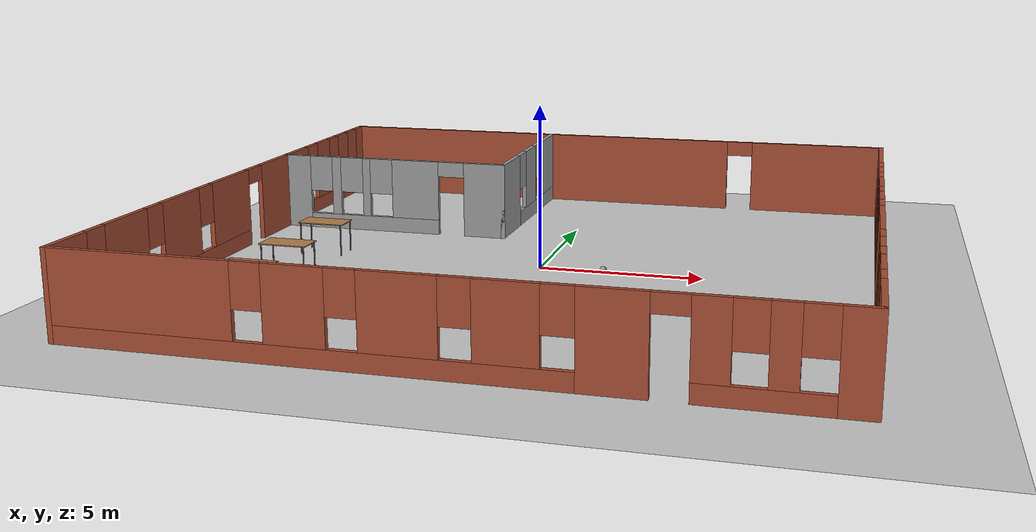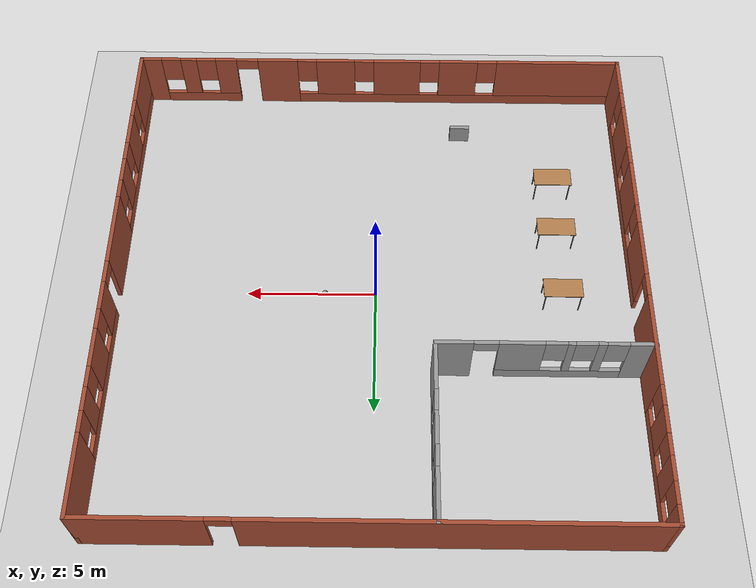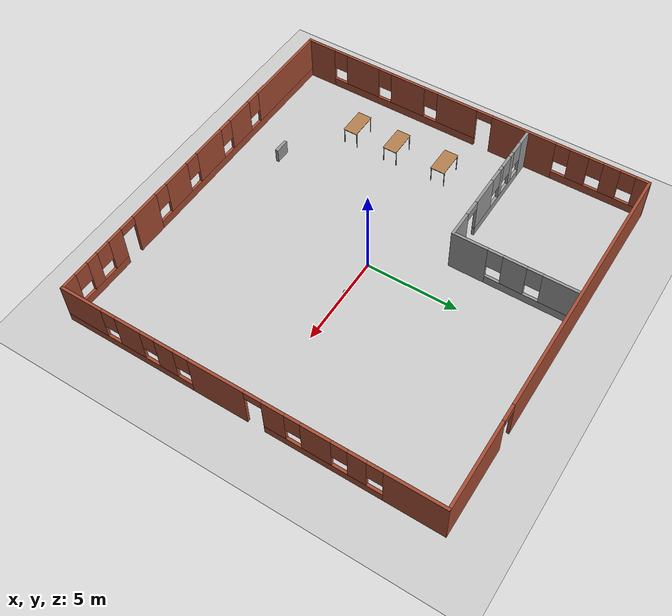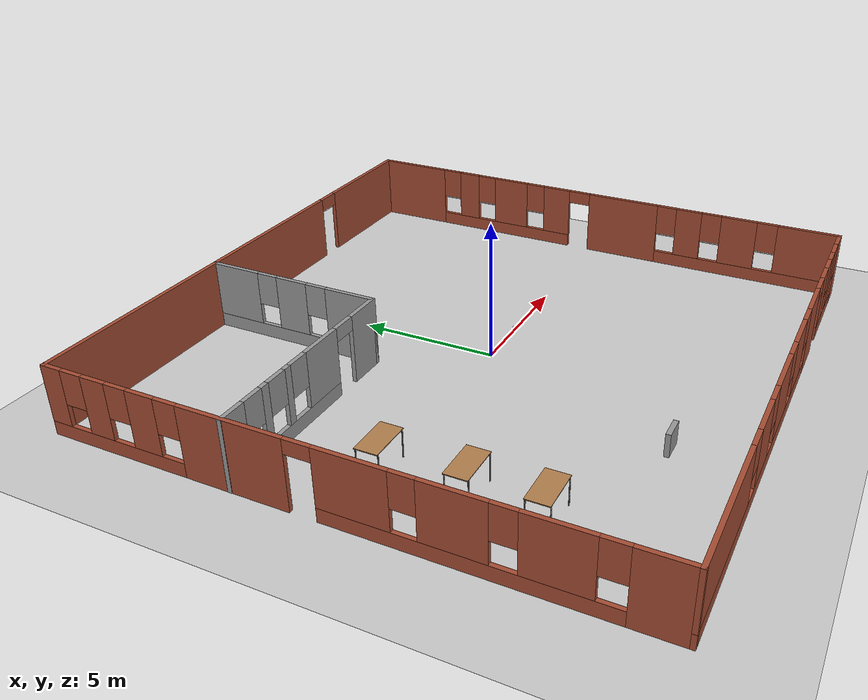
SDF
<sdf version="1.6">
 <world name="default">
  <plugin name="hello.cpp" filename="libhello.so"/>
  <light name="sun" type="directional">
   <pose>0 0 10 0 -0 0</pose>
   <diffuse>0.8 0.8 0.8 1</diffuse>
   <specular>0.2 0.2 0.2 1</specular>
   <attenuation>
    <range>1000</range>
    <constant>0.9</constant>
    <linear>0.01</linear>
    <quadratic>0.001</quadratic>
   </attenuation>
   <direction>-0.5 0.1 -0.9</direction>
  </light>
  <model name="ground_plane">
   <static>1</static>
   <link name="link">
    <collision name="collision">
     <geometry><plane><normal>0 0 1</normal><size>100 100</size></plane></geometry>
     <surface><friction><ode><mu>100</mu><mu2>50</mu2></ode></friction></surface>
    </collision>
    <visual name="visual">
     <cast_shadows>0</cast_shadows>
     <geometry><plane><normal>0 0 1</normal><size>100 100</size></plane></geometry>
     <material>
      <script><uri>file://media/materials/scripts/gazebo.material</uri><name>Gazebo/Grey</name></script>
     </material>
    </visual>
   </link>
  </model>
  <gravity>0 0 -9.8</gravity>
  <magnetic_field>6e-06 2.3e-05 -4.2e-05</magnetic_field>
  <atmosphere type="adiabatic"/>
  <physics name="default_physics" default="0" type="ode">
   <max_step_size>0.001</max_step_size>
   <real_time_factor>1</real_time_factor>
   <real_time_update_rate>1000</real_time_update_rate>
  </physics>
  <scene><ambient>0.4 0.4 0.4 1</ambient><background>0.7 0.7 0.7 1</background><shadows>1</shadows></scene>
  <spherical_coordinates>
   <surface_model>EARTH_WGS84</surface_model>
   <latitude_deg>0</latitude_deg>
   <longitude_deg>0</longitude_deg>
   <elevation>0</elevation>
   <heading_deg>0</heading_deg>
  </spherical_coordinates>
  <model name="building1">
   <pose>-0.00536 0 0 0 -0 0</pose>
   <link name="Wall_0">
    <pose>-9.99464 0 0 0 -0 1.5708</pose>
    <visual name="Wall_0_Visual_0">
     <pose>-9.21965 0 1.25 0 -0 0</pose>
     <geometry><box><size>1.71071 0.15 2.5</size></box></geometry>
     <material>
      <script><uri>file://media/materials/scripts/gazebo.material</uri><name>Gazebo/Bricks</name></script>
      <ambient>0.333333 0 0.498039 1</ambient>
     </material>
     <meta><layer>0</layer></meta>
    </visual>
    <collision name="Wall_0_Collision_0">
     <geometry><box><size>1.71071 0.15 2.5</size></box></geometry>
     <pose>-9.21965 0 1.25 0 -0 0</pose>
    </collision>
    <visual name="Wall_0_Visual_1">
     <pose>3.15877 0 1.25 0 -0 0</pose>
     <geometry><box><size>3.61725 0.15 2.5</size></box></geometry>
     <material>
      <script><uri>file://media/materials/scripts/gazebo.material</uri><name>Gazebo/Bricks</name></script>
      <ambient>0.333333 0 0.498039 1</ambient>
     </material>
     <meta><layer>0</layer></meta>
    </visual>
    <collision name="Wall_0_Collision_1">
     <geometry><box><size>3.61725 0.15 2.5</size></box></geometry>
     <pose>3.15877 0 1.25 0 -0 0</pose>
    </collision>
    <visual name="Wall_0_Visual_2">
     <pose>-3.95708 0 0.25 0 -0 0</pose>
     <geometry><box><size>8.81444 0.15 0.5</size></box></geometry>
     <material>
      <script><uri>file://media/materials/scripts/gazebo.material</uri><name>Gazebo/Bricks</name></script>
      <ambient>0.333333 0 0.498039 1</ambient>
     </material>
     <meta><layer>0</layer></meta>
    </visual>
    <collision name="Wall_0_Collision_2">
     <geometry><box><size>8.81444 0.15 0.5</size></box></geometry>
     <pose>-3.95708 0 0.25 0 -0 0</pose>
    </collision>
    <visual name="Wall_0_Visual_3">
     <pose>7.5212 0 0.25 0 -0 0</pose>
     <geometry><box><size>5.10761 0.15 0.5</size></box></geometry>
     <material>
      <script><uri>file://media/materials/scripts/gazebo.material</uri><name>Gazebo/Bricks</name></script>
      <ambient>0.333333 0 0.498039 1</ambient>
     </material>
     <meta><layer>0</layer></meta>
    </visual>
    <collision name="Wall_0_Collision_3">
     <geometry><box><size>5.10761 0.15 0.5</size></box></geometry>
     <pose>7.5212 0 0.25 0 -0 0</pose>
    </collision>
    <visual name="Wall_0_Visual_4">
     <pose>-6.54531 0 1.5 0 -0 0</pose>
     <geometry><box><size>2.03796 0.15 2</size></box></geometry>
     <material>
      <script><uri>file://media/materials/scripts/gazebo.material</uri><name>Gazebo/Bricks</name></script>
      <ambient>0.333333 0 0.498039 1</ambient>
     </material>
     <meta><layer>0</layer></meta>
    </visual>
    <collision name="Wall_0_Collision_4">
     <geometry><box><size>2.03796 0.15 2</size></box></geometry>
     <pose>-6.54531 0 1.5 0 -0 0</pose>
    </collision>
    <visual name="Wall_0_Visual_5">
     <pose>-3.70736 0 1.5 0 -0 0</pose>
     <geometry><box><size>2.03796 0.15 2</size></box></geometry>
     <material>
      <script><uri>file://media/materials/scripts/gazebo.material</uri><name>Gazebo/Bricks</name></script>
      <ambient>0.333333 0 0.498039 1</ambient>
     </material>
     <meta><layer>0</layer></meta>
    </visual>
    <collision name="Wall_0_Collision_5">
     <geometry><box><size>2.03796 0.15 2</size></box></geometry>
     <pose>-3.70736 0 1.5 0 -0 0</pose>
    </collision>
    <visual name="Wall_0_Visual_6">
     <pose>-0.719116 0 1.5 0 -0 0</pose>
     <geometry><box><size>2.33852 0.15 2</size></box></geometry>
     <material>
      <script><uri>file://media/materials/scripts/gazebo.material</uri><name>Gazebo/Bricks</name></script>
      <ambient>0.333333 0 0.498039 1</ambient>
     </material>
     <meta><layer>0</layer></meta>
    </visual>
    <collision name="Wall_0_Collision_6">
     <geometry><box><size>2.33852 0.15 2</size></box></geometry>
     <pose>-0.719116 0 1.5 0 -0 0</pose>
    </collision>
    <visual name="Wall_0_Visual_7">
     <pose>-0.719116 0 1.5 0 -0 0</pose>
     <geometry><box><size>2.33852 0.15 2</size></box></geometry>
     <material>
      <script><uri>file://media/materials/scripts/gazebo.material</uri><name>Gazebo/Bricks</name></script>
      <ambient>0.333333 0 0.498039 1</ambient>
     </material>
     <meta><layer>0</layer></meta>
    </visual>
    <collision name="Wall_0_Collision_7">
     <geometry><box><size>2.33852 0.15 2</size></box></geometry>
     <pose>-0.719116 0 1.5 0 -0 0</pose>
    </collision>
    <visual name="Wall_0_Visual_8">
     <pose>6.28281 0 1.5 0 -0 0</pose>
     <geometry><box><size>1.03084 0.15 2</size></box></geometry>
     <material>
      <script><uri>file://media/materials/scripts/gazebo.material</uri><name>Gazebo/Bricks</name></script>
      <ambient>0.333333 0 0.498039 1</ambient>
     </material>
     <meta><layer>0</layer></meta>
    </visual>
    <collision name="Wall_0_Collision_8">
     <geometry><box><size>1.03084 0.15 2</size></box></geometry>
     <pose>6.28281 0 1.5 0 -0 0</pose>
    </collision>
    <visual name="Wall_0_Visual_9">
     <pose>8.05262 0 1.5 0 -0 0</pose>
     <geometry><box><size>0.908783 0.15 2</size></box></geometry>
     <material>
      <script><uri>file://media/materials/scripts/gazebo.material</uri><name>Gazebo/Bricks</name></script>
      <ambient>0.333333 0 0.498039 1</ambient>
     </material>
     <meta><layer>0</layer></meta>
    </visual>
    <collision name="Wall_0_Collision_9">
     <geometry><box><size>0.908783 0.15 2</size></box></geometry>
     <pose>8.05262 0 1.5 0 -0 0</pose>
    </collision>
    <visual name="Wall_0_Visual_10">
     <pose>9.69101 0 1.5 0 -0 0</pose>
     <geometry><box><size>0.767987 0.15 2</size></box></geometry>
     <material>
      <script><uri>file://media/materials/scripts/gazebo.material</uri><name>Gazebo/Bricks</name></script>
      <ambient>0.333333 0 0.498039 1</ambient>
     </material>
     <meta><layer>0</layer></meta>
    </visual>
    <collision name="Wall_0_Collision_10">
     <geometry><box><size>0.767987 0.15 2</size></box></geometry>
     <pose>9.69101 0 1.5 0 -0 0</pose>
    </collision>
    <visual name="Wall_0_Visual_11">
     <pose>-7.96429 0 1.9 0 -0 0</pose>
     <geometry><box><size>0.8 0.15 1.2</size></box></geometry>
     <material>
      <script><uri>file://media/materials/scripts/gazebo.material</uri><name>Gazebo/Bricks</name></script>
      <ambient>0.333333 0 0.498039 1</ambient>
     </material>
     <meta><layer>0</layer></meta>
    </visual>
    <collision name="Wall_0_Collision_11">
     <geometry><box><size>0.8 0.15 1.2</size></box></geometry>
     <pose>-7.96429 0 1.9 0 -0 0</pose>
    </collision>
    <visual name="Wall_0_Visual_12">
     <pose>5.36739 0 1.9 0 -0 0</pose>
     <geometry><box><size>0.8 0.15 1.2</size></box></geometry>
     <material>
      <script><uri>file://media/materials/scripts/gazebo.material</uri><name>Gazebo/Bricks</name></script>
      <ambient>0.333333 0 0.498039 1</ambient>
     </material>
     <meta><layer>0</layer></meta>
    </visual>
    <collision name="Wall_0_Collision_12">
     <geometry><box><size>0.8 0.15 1.2</size></box></geometry>
     <pose>5.36739 0 1.9 0 -0 0</pose>
    </collision>
    <visual name="Wall_0_Visual_13">
     <pose>-5.12633 0 1.9 0 -0 0</pose>
     <geometry><box><size>0.8 0.15 1.2</size></box></geometry>
     <material>
      <script><uri>file://media/materials/scripts/gazebo.material</uri><name>Gazebo/Bricks</name></script>
      <ambient>0.333333 0 0.498039 1</ambient>
     </material>
     <meta><layer>0</layer></meta>
    </visual>
    <collision name="Wall_0_Collision_13">
     <geometry><box><size>0.8 0.15 1.2</size></box></geometry>
     <pose>-5.12633 0 1.9 0 -0 0</pose>
    </collision>
    <visual name="Wall_0_Visual_14">
     <pose>-2.28838 0 1.9 0 -0 0</pose>
     <geometry><box><size>0.8 0.15 1.2</size></box></geometry>
     <material>
      <script><uri>file://media/materials/scripts/gazebo.material</uri><name>Gazebo/Bricks</name></script>
      <ambient>0.333333 0 0.498039 1</ambient>
     </material>
     <meta><layer>0</layer></meta>
    </visual>
    <collision name="Wall_0_Collision_14">
     <geometry><box><size>0.8 0.15 1.2</size></box></geometry>
     <pose>-2.28838 0 1.9 0 -0 0</pose>
    </collision>
    <visual name="Wall_0_Visual_15">
     <pose>7.19823 0 1.9 0 -0 0</pose>
     <geometry><box><size>0.8 0.15 1.2</size></box></geometry>
     <material>
      <script><uri>file://media/materials/scripts/gazebo.material</uri><name>Gazebo/Bricks</name></script>
      <ambient>0.333333 0 0.498039 1</ambient>
     </material>
     <meta><layer>0</layer></meta>
    </visual>
    <collision name="Wall_0_Collision_15">
     <geometry><box><size>0.8 0.15 1.2</size></box></geometry>
     <pose>7.19823 0 1.9 0 -0 0</pose>
    </collision>
    <visual name="Wall_0_Visual_16">
     <pose>8.90701 0 1.9 0 -0 0</pose>
     <geometry><box><size>0.8 0.15 1.2</size></box></geometry>
     <material>
      <script><uri>file://media/materials/scripts/gazebo.material</uri><name>Gazebo/Bricks</name></script>
      <ambient>0.333333 0 0.498039 1</ambient>
     </material>
     <meta><layer>0</layer></meta>
    </visual>
    <collision name="Wall_0_Collision_16">
     <geometry><box><size>0.8 0.15 1.2</size></box></geometry>
     <pose>8.90701 0 1.9 0 -0 0</pose>
    </collision>
    <visual name="Wall_0_Visual_17">
     <pose>0.900144 0 2.25 0 -0 0</pose>
     <geometry><box><size>0.9 0.15 0.5</size></box></geometry>
     <material>
      <script><uri>file://media/materials/scripts/gazebo.material</uri><name>Gazebo/Bricks</name></script>
      <ambient>0.333333 0 0.498039 1</ambient>
     </material>
     <meta><layer>0</layer></meta>
    </visual>
    <collision name="Wall_0_Collision_17">
     <geometry><box><size>0.9 0.15 0.5</size></box></geometry>
     <pose>0.900144 0 2.25 0 -0 0</pose>
    </collision>
    <visual name="Wall_0_Visual_18">
     <pose>0.900144 0 2.25 0 -0 0</pose>
     <geometry><box><size>0.9 0.15 0.5</size></box></geometry>
     <material>
      <script><uri>file://media/materials/scripts/gazebo.material</uri><name>Gazebo/Bricks</name></script>
      <ambient>0.333333 0 0.498039 1</ambient>
     </material>
     <meta><layer>0</layer></meta>
    </visual>
    <collision name="Wall_0_Collision_18">
     <geometry><box><size>0.9 0.15 0.5</size></box></geometry>
     <pose>0.900144 0 2.25 0 -0 0</pose>
    </collision>
   </link>
   <link name="Wall_1">
    <pose>0.005363 10 0 0 -0 0</pose>
    <visual name="Wall_1_Visual_0">
     <pose>-2.76626 0 1.25 0 -0 0</pose>
     <geometry><box><size>14.6175 0.15 2.5</size></box></geometry>
     <material>
      <script><uri>file://media/materials/scripts/gazebo.material</uri><name>Gazebo/Bricks</name></script>
      <ambient>0 0.333333 0 1</ambient>
     </material>
     <meta><layer>0</layer></meta>
    </visual>
    <collision name="Wall_1_Collision_0">
     <geometry><box><size>14.6175 0.15 2.5</size></box></geometry>
     <pose>-2.76626 0 1.25 0 -0 0</pose>
    </collision>
    <visual name="Wall_1_Visual_1">
     <pose>7.75874 0 1.25 0 -0 0</pose>
     <geometry><box><size>4.63252 0.15 2.5</size></box></geometry>
     <material>
      <script><uri>file://media/materials/scripts/gazebo.material</uri><name>Gazebo/Bricks</name></script>
      <ambient>0 0.333333 0 1</ambient>
     </material>
     <meta><layer>0</layer></meta>
    </visual>
    <collision name="Wall_1_Collision_1">
     <geometry><box><size>4.63252 0.15 2.5</size></box></geometry>
     <pose>7.75874 0 1.25 0 -0 0</pose>
    </collision>
    <visual name="Wall_1_Visual_2">
     <pose>4.99248 0 2.25 0 -0 0</pose>
     <geometry><box><size>0.9 0.15 0.5</size></box></geometry>
     <material>
      <script><uri>file://media/materials/scripts/gazebo.material</uri><name>Gazebo/Bricks</name></script>
      <ambient>0 0.333333 0 1</ambient>
     </material>
     <meta><layer>0</layer></meta>
    </visual>
    <collision name="Wall_1_Collision_2">
     <geometry><box><size>0.9 0.15 0.5</size></box></geometry>
     <pose>4.99248 0 2.25 0 -0 0</pose>
    </collision>
   </link>
   <link name="Wall_2">
    <pose>10.0054 0 0 0 0 -1.5708</pose>
    <visual name="Wall_2_Visual_0">
     <pose>-8.55182 0 1.25 0 -0 0</pose>
     <geometry><box><size>3.04636 0.15 2.5</size></box></geometry>
     <material>
      <script><uri>file://media/materials/scripts/gazebo.material</uri><name>Gazebo/Bricks</name></script>
      <ambient>0.333333 0 0.498039 1</ambient>
     </material>
     <meta><layer>0</layer></meta>
    </visual>
    <collision name="Wall_2_Collision_0">
     <geometry><box><size>3.04636 0.15 2.5</size></box></geometry>
     <pose>-8.55182 0 1.25 0 -0 0</pose>
    </collision>
    <visual name="Wall_2_Visual_1">
     <pose>1.34263 0 1.25 0 -0 0</pose>
     <geometry><box><size>2.96678 0.15 2.5</size></box></geometry>
     <material>
      <script><uri>file://media/materials/scripts/gazebo.material</uri><name>Gazebo/Bricks</name></script>
      <ambient>0.333333 0 0.498039 1</ambient>
     </material>
     <meta><layer>0</layer></meta>
    </visual>
    <collision name="Wall_2_Collision_1">
     <geometry><box><size>2.96678 0.15 2.5</size></box></geometry>
     <pose>1.34263 0 1.25 0 -0 0</pose>
    </collision>
    <visual name="Wall_2_Visual_2">
     <pose>-4.0347 0 0.25 0 -0 0</pose>
     <geometry><box><size>5.98788 0.15 0.5</size></box></geometry>
     <material>
      <script><uri>file://media/materials/scripts/gazebo.material</uri><name>Gazebo/Bricks</name></script>
      <ambient>0.333333 0 0.498039 1</ambient>
     </material>
     <meta><layer>0</layer></meta>
    </visual>
    <collision name="Wall_2_Collision_2">
     <geometry><box><size>5.98788 0.15 0.5</size></box></geometry>
     <pose>-4.0347 0 0.25 0 -0 0</pose>
    </collision>
    <visual name="Wall_2_Visual_3">
     <pose>6.45051 0 0.25 0 -0 0</pose>
     <geometry><box><size>7.24897 0.15 0.5</size></box></geometry>
     <material>
      <script><uri>file://media/materials/scripts/gazebo.material</uri><name>Gazebo/Bricks</name></script>
      <ambient>0.333333 0 0.498039 1</ambient>
     </material>
     <meta><layer>0</layer></meta>
    </visual>
    <collision name="Wall_2_Collision_3">
     <geometry><box><size>7.24897 0.15 0.5</size></box></geometry>
     <pose>6.45051 0 0.25 0 -0 0</pose>
    </collision>
    <visual name="Wall_2_Visual_4">
     <pose>-5.77424 0 1.5 0 -0 0</pose>
     <geometry><box><size>0.908783 0.15 2</size></box></geometry>
     <material>
      <script><uri>file://media/materials/scripts/gazebo.material</uri><name>Gazebo/Bricks</name></script>
      <ambient>0.333333 0 0.498039 1</ambient>
     </material>
     <meta><layer>0</layer></meta>
    </visual>
    <collision name="Wall_2_Collision_4">
     <geometry><box><size>0.908783 0.15 2</size></box></geometry>
     <pose>-5.77424 0 1.5 0 -0 0</pose>
    </collision>
    <visual name="Wall_2_Visual_5">
     <pose>-3.76032 0 1.5 0 -0 0</pose>
     <geometry><box><size>1.51906 0.15 2</size></box></geometry>
     <material>
      <script><uri>file://media/materials/scripts/gazebo.material</uri><name>Gazebo/Bricks</name></script>
      <ambient>0.333333 0 0.498039 1</ambient>
     </material>
     <meta><layer>0</layer></meta>
    </visual>
    <collision name="Wall_2_Collision_5">
     <geometry><box><size>1.51906 0.15 2</size></box></geometry>
     <pose>-3.76032 0 1.5 0 -0 0</pose>
    </collision>
    <visual name="Wall_2_Visual_6">
     <pose>-1.62077 0 1.5 0 -0 0</pose>
     <geometry><box><size>1.16003 0.15 2</size></box></geometry>
     <material>
      <script><uri>file://media/materials/scripts/gazebo.material</uri><name>Gazebo/Bricks</name></script>
      <ambient>0.333333 0 0.498039 1</ambient>
     </material>
     <meta><layer>0</layer></meta>
    </visual>
    <collision name="Wall_2_Collision_6">
     <geometry><box><size>1.16003 0.15 2</size></box></geometry>
     <pose>-1.62077 0 1.5 0 -0 0</pose>
    </collision>
    <visual name="Wall_2_Visual_7">
     <pose>-1.62077 0 1.5 0 -0 0</pose>
     <geometry><box><size>1.16003 0.15 2</size></box></geometry>
     <material>
      <script><uri>file://media/materials/scripts/gazebo.material</uri><name>Gazebo/Bricks</name></script>
      <ambient>0.333333 0 0.498039 1</ambient>
     </material>
     <meta><layer>0</layer></meta>
    </visual>
    <collision name="Wall_2_Collision_7">
     <geometry><box><size>1.16003 0.15 2</size></box></geometry>
     <pose>-1.62077 0 1.5 0 -0 0</pose>
    </collision>
    <visual name="Wall_2_Visual_8">
     <pose>4.14894 0 1.5 0 -0 0</pose>
     <geometry><box><size>1.04584 0.15 2</size></box></geometry>
     <material>
      <script><uri>file://media/materials/scripts/gazebo.material</uri><name>Gazebo/Bricks</name></script>
      <ambient>0.333333 0 0.498039 1</ambient>
     </material>
     <meta><layer>0</layer></meta>
    </visual>
    <collision name="Wall_2_Collision_8">
     <geometry><box><size>1.04584 0.15 2</size></box></geometry>
     <pose>4.14894 0 1.5 0 -0 0</pose>
    </collision>
    <visual name="Wall_2_Visual_9">
     <pose>6.18204 0 1.5 0 -0 0</pose>
     <geometry><box><size>1.42035 0.15 2</size></box></geometry>
     <material>
      <script><uri>file://media/materials/scripts/gazebo.material</uri><name>Gazebo/Bricks</name></script>
      <ambient>0.333333 0 0.498039 1</ambient>
     </material>
     <meta><layer>0</layer></meta>
    </visual>
    <collision name="Wall_2_Collision_9">
     <geometry><box><size>1.42035 0.15 2</size></box></geometry>
     <pose>6.18204 0 1.5 0 -0 0</pose>
    </collision>
    <visual name="Wall_2_Visual_10">
     <pose>8.88361 0 1.5 0 -0 0</pose>
     <geometry><box><size>2.38278 0.15 2</size></box></geometry>
     <material>
      <script><uri>file://media/materials/scripts/gazebo.material</uri><name>Gazebo/Bricks</name></script>
      <ambient>0.333333 0 0.498039 1</ambient>
     </material>
     <meta><layer>0</layer></meta>
    </visual>
    <collision name="Wall_2_Collision_10">
     <geometry><box><size>2.38278 0.15 2</size></box></geometry>
     <pose>8.88361 0 1.5 0 -0 0</pose>
    </collision>
    <visual name="Wall_2_Visual_11">
     <pose>-6.62864 0 1.9 0 -0 0</pose>
     <geometry><box><size>0.8 0.15 1.2</size></box></geometry>
     <material>
      <script><uri>file://media/materials/scripts/gazebo.material</uri><name>Gazebo/Bricks</name></script>
      <ambient>0.333333 0 0.498039 1</ambient>
     </material>
     <meta><layer>0</layer></meta>
    </visual>
    <collision name="Wall_2_Collision_11">
     <geometry><box><size>0.8 0.15 1.2</size></box></geometry>
     <pose>-6.62864 0 1.9 0 -0 0</pose>
    </collision>
    <visual name="Wall_2_Visual_12">
     <pose>3.22603 0 1.9 0 -0 0</pose>
     <geometry><box><size>0.8 0.15 1.2</size></box></geometry>
     <material>
      <script><uri>file://media/materials/scripts/gazebo.material</uri><name>Gazebo/Bricks</name></script>
      <ambient>0.333333 0 0.498039 1</ambient>
     </material>
     <meta><layer>0</layer></meta>
    </visual>
    <collision name="Wall_2_Collision_12">
     <geometry><box><size>0.8 0.15 1.2</size></box></geometry>
     <pose>3.22603 0 1.9 0 -0 0</pose>
    </collision>
    <visual name="Wall_2_Visual_13">
     <pose>-4.91985 0 1.9 0 -0 0</pose>
     <geometry><box><size>0.8 0.15 1.2</size></box></geometry>
     <material>
      <script><uri>file://media/materials/scripts/gazebo.material</uri><name>Gazebo/Bricks</name></script>
      <ambient>0.333333 0 0.498039 1</ambient>
     </material>
     <meta><layer>0</layer></meta>
    </visual>
    <collision name="Wall_2_Collision_13">
     <geometry><box><size>0.8 0.15 1.2</size></box></geometry>
     <pose>-4.91985 0 1.9 0 -0 0</pose>
    </collision>
    <visual name="Wall_2_Visual_14">
     <pose>-2.60079 0 1.9 0 -0 0</pose>
     <geometry><box><size>0.8 0.15 1.2</size></box></geometry>
     <material>
      <script><uri>file://media/materials/scripts/gazebo.material</uri><name>Gazebo/Bricks</name></script>
      <ambient>0.333333 0 0.498039 1</ambient>
     </material>
     <meta><layer>0</layer></meta>
    </visual>
    <collision name="Wall_2_Collision_14">
     <geometry><box><size>0.8 0.15 1.2</size></box></geometry>
     <pose>-2.60079 0 1.9 0 -0 0</pose>
    </collision>
    <visual name="Wall_2_Visual_15">
     <pose>5.07186 0 1.9 0 -0 0</pose>
     <geometry><box><size>0.8 0.15 1.2</size></box></geometry>
     <material>
      <script><uri>file://media/materials/scripts/gazebo.material</uri><name>Gazebo/Bricks</name></script>
      <ambient>0.333333 0 0.498039 1</ambient>
     </material>
     <meta><layer>0</layer></meta>
    </visual>
    <collision name="Wall_2_Collision_15">
     <geometry><box><size>0.8 0.15 1.2</size></box></geometry>
     <pose>5.07186 0 1.9 0 -0 0</pose>
    </collision>
    <visual name="Wall_2_Visual_16">
     <pose>7.29222 0 1.9 0 -0 0</pose>
     <geometry><box><size>0.8 0.15 1.2</size></box></geometry>
     <material>
      <script><uri>file://media/materials/scripts/gazebo.material</uri><name>Gazebo/Bricks</name></script>
      <ambient>0.333333 0 0.498039 1</ambient>
     </material>
     <meta><layer>0</layer></meta>
    </visual>
    <collision name="Wall_2_Collision_16">
     <geometry><box><size>0.8 0.15 1.2</size></box></geometry>
     <pose>7.29222 0 1.9 0 -0 0</pose>
    </collision>
    <visual name="Wall_2_Visual_17">
     <pose>-0.590757 0 2.25 0 -0 0</pose>
     <geometry><box><size>0.9 0.15 0.5</size></box></geometry>
     <material>
      <script><uri>file://media/materials/scripts/gazebo.material</uri><name>Gazebo/Bricks</name></script>
      <ambient>0.333333 0 0.498039 1</ambient>
     </material>
     <meta><layer>0</layer></meta>
    </visual>
    <collision name="Wall_2_Collision_17">
     <geometry><box><size>0.9 0.15 0.5</size></box></geometry>
     <pose>-0.590757 0 2.25 0 -0 0</pose>
    </collision>
    <visual name="Wall_2_Visual_18">
     <pose>-0.590757 0 2.25 0 -0 0</pose>
     <geometry><box><size>0.9 0.15 0.5</size></box></geometry>
     <material>
      <script><uri>file://media/materials/scripts/gazebo.material</uri><name>Gazebo/Bricks</name></script>
      <ambient>0.333333 0 0.498039 1</ambient>
     </material>
     <meta><layer>0</layer></meta>
    </visual>
    <collision name="Wall_2_Collision_18">
     <geometry><box><size>0.9 0.15 0.5</size></box></geometry>
     <pose>-0.590757 0 2.25 0 -0 0</pose>
    </collision>
   </link>
   <link name="Wall_3">
    <pose>0.005363 -10 0 0 -0 3.14159</pose>
    <visual name="Wall_3_Visual_0">
     <pose>-9.61961 0 1.25 0 -0 0</pose>
     <geometry><box><size>0.910771 0.15 2.5</size></box></geometry>
     <material>
      <script><uri>file://media/materials/scripts/gazebo.material</uri><name>Gazebo/Bricks</name></script>
      <ambient>0 0.333333 0 1</ambient>
     </material>
     <meta><layer>0</layer></meta>
    </visual>
    <collision name="Wall_3_Collision_0">
     <geometry><box><size>0.910771 0.15 2.5</size></box></geometry>
     <pose>-9.61961 0 1.25 0 -0 0</pose>
    </collision>
    <visual name="Wall_3_Visual_1">
     <pose>-4.27329 0 1.25 0 -0 0</pose>
     <geometry><box><size>1.66767 0.15 2.5</size></box></geometry>
     <material>
      <script><uri>file://media/materials/scripts/gazebo.material</uri><name>Gazebo/Bricks</name></script>
      <ambient>0 0.333333 0 1</ambient>
     </material>
     <meta><layer>0</layer></meta>
    </visual>
    <collision name="Wall_3_Collision_1">
     <geometry><box><size>1.66767 0.15 2.5</size></box></geometry>
     <pose>-4.27329 0 1.25 0 -0 0</pose>
    </collision>
    <visual name="Wall_3_Visual_2">
     <pose>-7.58568 0 0.25 0 -0 0</pose>
     <geometry><box><size>3.1571 0.15 0.5</size></box></geometry>
     <material>
      <script><uri>file://media/materials/scripts/gazebo.material</uri><name>Gazebo/Bricks</name></script>
      <ambient>0 0.333333 0 1</ambient>
     </material>
     <meta><layer>0</layer></meta>
    </visual>
    <collision name="Wall_3_Collision_2">
     <geometry><box><size>3.1571 0.15 0.5</size></box></geometry>
     <pose>-7.58568 0 0.25 0 -0 0</pose>
    </collision>
    <visual name="Wall_3_Visual_3">
     <pose>3.31777 0 0.25 0 -0 0</pose>
     <geometry><box><size>13.5145 0.15 0.5</size></box></geometry>
     <material>
      <script><uri>file://media/materials/scripts/gazebo.material</uri><name>Gazebo/Bricks</name></script>
      <ambient>0 0.333333 0 1</ambient>
     </material>
     <meta><layer>0</layer></meta>
    </visual>
    <collision name="Wall_3_Collision_3">
     <geometry><box><size>13.5145 0.15 0.5</size></box></geometry>
     <pose>3.31777 0 0.25 0 -0 0</pose>
    </collision>
    <visual name="Wall_3_Visual_4">
     <pose>-8.02857 0 1.5 0 -0 0</pose>
     <geometry><box><size>0.671319 0.15 2</size></box></geometry>
     <material>
      <script><uri>file://media/materials/scripts/gazebo.material</uri><name>Gazebo/Bricks</name></script>
      <ambient>0 0.333333 0 1</ambient>
     </material>
     <meta><layer>0</layer></meta>
    </visual>
    <collision name="Wall_3_Collision_4">
     <geometry><box><size>0.671319 0.15 2</size></box></geometry>
     <pose>-8.02857 0 1.5 0 -0 0</pose>
    </collision>
    <visual name="Wall_3_Visual_5">
     <pose>-6.45002 0 1.5 0 -0 0</pose>
     <geometry><box><size>0.885783 0.15 2</size></box></geometry>
     <material>
      <script><uri>file://media/materials/scripts/gazebo.material</uri><name>Gazebo/Bricks</name></script>
      <ambient>0 0.333333 0 1</ambient>
     </material>
     <meta><layer>0</layer></meta>
    </visual>
    <collision name="Wall_3_Collision_5">
     <geometry><box><size>0.885783 0.15 2</size></box></geometry>
     <pose>-6.45002 0 1.5 0 -0 0</pose>
    </collision>
    <visual name="Wall_3_Visual_6">
     <pose>-6.45002 0 1.5 0 -0 0</pose>
     <geometry><box><size>0.885783 0.15 2</size></box></geometry>
     <material>
      <script><uri>file://media/materials/scripts/gazebo.material</uri><name>Gazebo/Bricks</name></script>
      <ambient>0 0.333333 0 1</ambient>
     </material>
     <meta><layer>0</layer></meta>
    </visual>
    <collision name="Wall_3_Collision_6">
     <geometry><box><size>0.885783 0.15 2</size></box></geometry>
     <pose>-6.45002 0 1.5 0 -0 0</pose>
    </collision>
    <visual name="Wall_3_Visual_7">
     <pose>-1.83566 0 1.5 0 -0 0</pose>
     <geometry><box><size>1.60761 0.15 2</size></box></geometry>
     <material>
      <script><uri>file://media/materials/scripts/gazebo.material</uri><name>Gazebo/Bricks</name></script>
      <ambient>0 0.333333 0 1</ambient>
     </material>
     <meta><layer>0</layer></meta>
    </visual>
    <collision name="Wall_3_Collision_7">
     <geometry><box><size>1.60761 0.15 2</size></box></geometry>
     <pose>-1.83566 0 1.5 0 -0 0</pose>
    </collision>
    <visual name="Wall_3_Visual_8">
     <pose>0.759216 0 1.5 0 -0 0</pose>
     <geometry><box><size>1.98213 0.15 2</size></box></geometry>
     <material>
      <script><uri>file://media/materials/scripts/gazebo.material</uri><name>Gazebo/Bricks</name></script>
      <ambient>0 0.333333 0 1</ambient>
     </material>
     <meta><layer>0</layer></meta>
    </visual>
    <collision name="Wall_3_Collision_8">
     <geometry><box><size>1.98213 0.15 2</size></box></geometry>
     <pose>0.759216 0 1.5 0 -0 0</pose>
    </collision>
    <visual name="Wall_3_Visual_9">
     <pose>3.35409 0 1.5 0 -0 0</pose>
     <geometry><box><size>1.60761 0.15 2</size></box></geometry>
     <material>
      <script><uri>file://media/materials/scripts/gazebo.material</uri><name>Gazebo/Bricks</name></script>
      <ambient>0 0.333333 0 1</ambient>
     </material>
     <meta><layer>0</layer></meta>
    </visual>
    <collision name="Wall_3_Collision_9">
     <geometry><box><size>1.60761 0.15 2</size></box></geometry>
     <pose>3.35409 0 1.5 0 -0 0</pose>
    </collision>
    <visual name="Wall_3_Visual_10">
     <pose>7.51645 0 1.5 0 -0 0</pose>
     <geometry><box><size>5.11711 0.15 2</size></box></geometry>
     <material>
      <script><uri>file://media/materials/scripts/gazebo.material</uri><name>Gazebo/Bricks</name></script>
      <ambient>0 0.333333 0 1</ambient>
     </material>
     <meta><layer>0</layer></meta>
    </visual>
    <collision name="Wall_3_Collision_10">
     <geometry><box><size>5.11711 0.15 2</size></box></geometry>
     <pose>7.51645 0 1.5 0 -0 0</pose>
    </collision>
    <visual name="Wall_3_Visual_11">
     <pose>-8.76423 0 1.9 0 -0 0</pose>
     <geometry><box><size>0.8 0.15 1.2</size></box></geometry>
     <material>
      <script><uri>file://media/materials/scripts/gazebo.material</uri><name>Gazebo/Bricks</name></script>
      <ambient>0 0.333333 0 1</ambient>
     </material>
     <meta><layer>0</layer></meta>
    </visual>
    <collision name="Wall_3_Collision_11">
     <geometry><box><size>0.8 0.15 1.2</size></box></geometry>
     <pose>-8.76423 0 1.9 0 -0 0</pose>
    </collision>
    <visual name="Wall_3_Visual_12">
     <pose>-3.03946 0 1.9 0 -0 0</pose>
     <geometry><box><size>0.8 0.15 1.2</size></box></geometry>
     <material>
      <script><uri>file://media/materials/scripts/gazebo.material</uri><name>Gazebo/Bricks</name></script>
      <ambient>0 0.333333 0 1</ambient>
     </material>
     <meta><layer>0</layer></meta>
    </visual>
    <collision name="Wall_3_Collision_12">
     <geometry><box><size>0.8 0.15 1.2</size></box></geometry>
     <pose>-3.03946 0 1.9 0 -0 0</pose>
    </collision>
    <visual name="Wall_3_Visual_13">
     <pose>-7.29291 0 1.9 0 -0 0</pose>
     <geometry><box><size>0.8 0.15 1.2</size></box></geometry>
     <material>
      <script><uri>file://media/materials/scripts/gazebo.material</uri><name>Gazebo/Bricks</name></script>
      <ambient>0 0.333333 0 1</ambient>
     </material>
     <meta><layer>0</layer></meta>
    </visual>
    <collision name="Wall_3_Collision_13">
     <geometry><box><size>0.8 0.15 1.2</size></box></geometry>
     <pose>-7.29291 0 1.9 0 -0 0</pose>
    </collision>
    <visual name="Wall_3_Visual_14">
     <pose>-0.631849 0 1.9 0 -0 0</pose>
     <geometry><box><size>0.8 0.15 1.2</size></box></geometry>
     <material>
      <script><uri>file://media/materials/scripts/gazebo.material</uri><name>Gazebo/Bricks</name></script>
      <ambient>0 0.333333 0 1</ambient>
     </material>
     <meta><layer>0</layer></meta>
    </visual>
    <collision name="Wall_3_Collision_14">
     <geometry><box><size>0.8 0.15 1.2</size></box></geometry>
     <pose>-0.631849 0 1.9 0 -0 0</pose>
    </collision>
    <visual name="Wall_3_Visual_15">
     <pose>2.15028 0 1.9 0 -0 0</pose>
     <geometry><box><size>0.8 0.15 1.2</size></box></geometry>
     <material>
      <script><uri>file://media/materials/scripts/gazebo.material</uri><name>Gazebo/Bricks</name></script>
      <ambient>0 0.333333 0 1</ambient>
     </material>
     <meta><layer>0</layer></meta>
    </visual>
    <collision name="Wall_3_Collision_15">
     <geometry><box><size>0.8 0.15 1.2</size></box></geometry>
     <pose>2.15028 0 1.9 0 -0 0</pose>
    </collision>
    <visual name="Wall_3_Visual_16">
     <pose>4.55789 0 1.9 0 -0 0</pose>
     <geometry><box><size>0.8 0.15 1.2</size></box></geometry>
     <material>
      <script><uri>file://media/materials/scripts/gazebo.material</uri><name>Gazebo/Bricks</name></script>
      <ambient>0 0.333333 0 1</ambient>
     </material>
     <meta><layer>0</layer></meta>
    </visual>
    <collision name="Wall_3_Collision_16">
     <geometry><box><size>0.8 0.15 1.2</size></box></geometry>
     <pose>4.55789 0 1.9 0 -0 0</pose>
    </collision>
    <visual name="Wall_3_Visual_17">
     <pose>-5.55713 0 2.25 0 -0 0</pose>
     <geometry><box><size>0.9 0.15 0.5</size></box></geometry>
     <material>
      <script><uri>file://media/materials/scripts/gazebo.material</uri><name>Gazebo/Bricks</name></script>
      <ambient>0 0.333333 0 1</ambient>
     </material>
     <meta><layer>0</layer></meta>
    </visual>
    <collision name="Wall_3_Collision_17">
     <geometry><box><size>0.9 0.15 0.5</size></box></geometry>
     <pose>-5.55713 0 2.25 0 -0 0</pose>
    </collision>
    <visual name="Wall_3_Visual_18">
     <pose>-5.55713 0 2.25 0 -0 0</pose>
     <geometry><box><size>0.9 0.15 0.5</size></box></geometry>
     <material>
      <script><uri>file://media/materials/scripts/gazebo.material</uri><name>Gazebo/Bricks</name></script>
      <ambient>0 0.333333 0 1</ambient>
     </material>
     <meta><layer>0</layer></meta>
    </visual>
    <collision name="Wall_3_Collision_18">
     <geometry><box><size>0.9 0.15 0.5</size></box></geometry>
     <pose>-5.55713 0 2.25 0 -0 0</pose>
    </collision>
   </link>
   <link name="Wall_5">
    <pose>-6.08036 3.39834 0 0 -0 0</pose>
    <visual name="Wall_5_Visual_0">
     <pose>-3.49702 0 1.25 0 -0 0</pose>
     <geometry><box><size>1.00596 0.15 2.5</size></box></geometry>
     <material>
      <script><uri>file://media/materials/scripts/gazebo.material</uri><name>Gazebo/Grey</name></script>
      <ambient>1 1 1 1</ambient>
     </material>
     <meta><layer>0</layer></meta>
    </visual>
    <collision name="Wall_5_Collision_0">
     <geometry><box><size>1.00596 0.15 2.5</size></box></geometry>
     <pose>-3.49702 0 1.25 0 -0 0</pose>
    </collision>
    <visual name="Wall_5_Visual_1">
     <pose>3.28132 0 1.25 0 -0 0</pose>
     <geometry><box><size>1.43735 0.15 2.5</size></box></geometry>
     <material>
      <script><uri>file://media/materials/scripts/gazebo.material</uri><name>Gazebo/Grey</name></script>
      <ambient>1 1 1 1</ambient>
     </material>
     <meta><layer>0</layer></meta>
    </visual>
    <collision name="Wall_5_Collision_1">
     <geometry><box><size>1.43735 0.15 2.5</size></box></geometry>
     <pose>3.28132 0 1.25 0 -0 0</pose>
    </collision>
    <visual name="Wall_5_Visual_2">
     <pose>-0.665697 0 0.25 0 -0 0</pose>
     <geometry><box><size>4.65669 0.15 0.5</size></box></geometry>
     <material>
      <script><uri>file://media/materials/scripts/gazebo.material</uri><name>Gazebo/Grey</name></script>
      <ambient>1 1 1 1</ambient>
     </material>
     <meta><layer>0</layer></meta>
    </visual>
    <collision name="Wall_5_Collision_2">
     <geometry><box><size>4.65669 0.15 0.5</size></box></geometry>
     <pose>-0.665697 0 0.25 0 -0 0</pose>
    </collision>
    <visual name="Wall_5_Visual_3">
     <pose>-2.03303 0 1.5 0 -0 0</pose>
     <geometry><box><size>0.322017 0.15 2</size></box></geometry>
     <material>
      <script><uri>file://media/materials/scripts/gazebo.material</uri><name>Gazebo/Grey</name></script>
      <ambient>1 1 1 1</ambient>
     </material>
     <meta><layer>0</layer></meta>
    </visual>
    <collision name="Wall_5_Collision_3">
     <geometry><box><size>0.322017 0.15 2</size></box></geometry>
     <pose>-2.03303 0 1.5 0 -0 0</pose>
    </collision>
    <visual name="Wall_5_Visual_4">
     <pose>-0.934528 0 1.5 0 -0 0</pose>
     <geometry><box><size>0.274989 0.15 2</size></box></geometry>
     <material>
      <script><uri>file://media/materials/scripts/gazebo.material</uri><name>Gazebo/Grey</name></script>
      <ambient>1 1 1 1</ambient>
     </material>
     <meta><layer>0</layer></meta>
    </visual>
    <collision name="Wall_5_Collision_4">
     <geometry><box><size>0.274989 0.15 2</size></box></geometry>
     <pose>-0.934528 0 1.5 0 -0 0</pose>
    </collision>
    <visual name="Wall_5_Visual_5">
     <pose>0.832806 0 1.5 0 -0 0</pose>
     <geometry><box><size>1.65968 0.15 2</size></box></geometry>
     <material>
      <script><uri>file://media/materials/scripts/gazebo.material</uri><name>Gazebo/Grey</name></script>
      <ambient>1 1 1 1</ambient>
     </material>
     <meta><layer>0</layer></meta>
    </visual>
    <collision name="Wall_5_Collision_5">
     <geometry><box><size>1.65968 0.15 2</size></box></geometry>
     <pose>0.832806 0 1.5 0 -0 0</pose>
    </collision>
    <visual name="Wall_5_Visual_6">
     <pose>-2.59404 0 1.9 0 -0 0</pose>
     <geometry><box><size>0.8 0.15 1.2</size></box></geometry>
     <material>
      <script><uri>file://media/materials/scripts/gazebo.material</uri><name>Gazebo/Grey</name></script>
      <ambient>1 1 1 1</ambient>
     </material>
     <meta><layer>0</layer></meta>
    </visual>
    <collision name="Wall_5_Collision_6">
     <geometry><box><size>0.8 0.15 1.2</size></box></geometry>
     <pose>-2.59404 0 1.9 0 -0 0</pose>
    </collision>
    <visual name="Wall_5_Visual_7">
     <pose>-1.47202 0 1.9 0 -0 0</pose>
     <geometry><box><size>0.8 0.15 1.2</size></box></geometry>
     <material>
      <script><uri>file://media/materials/scripts/gazebo.material</uri><name>Gazebo/Grey</name></script>
      <ambient>1 1 1 1</ambient>
     </material>
     <meta><layer>0</layer></meta>
    </visual>
    <collision name="Wall_5_Collision_7">
     <geometry><box><size>0.8 0.15 1.2</size></box></geometry>
     <pose>-1.47202 0 1.9 0 -0 0</pose>
    </collision>
    <visual name="Wall_5_Visual_8">
     <pose>-0.397033 0 1.9 0 -0 0</pose>
     <geometry><box><size>0.8 0.15 1.2</size></box></geometry>
     <material>
      <script><uri>file://media/materials/scripts/gazebo.material</uri><name>Gazebo/Grey</name></script>
      <ambient>1 1 1 1</ambient>
     </material>
     <meta><layer>0</layer></meta>
    </visual>
    <collision name="Wall_5_Collision_8">
     <geometry><box><size>0.8 0.15 1.2</size></box></geometry>
     <pose>-0.397033 0 1.9 0 -0 0</pose>
    </collision>
    <visual name="Wall_5_Visual_9">
     <pose>2.11265 0 2.25 0 -0 0</pose>
     <geometry><box><size>0.9 0.15 0.5</size></box></geometry>
     <material>
      <script><uri>file://media/materials/scripts/gazebo.material</uri><name>Gazebo/Grey</name></script>
      <ambient>1 1 1 1</ambient>
     </material>
     <meta><layer>0</layer></meta>
    </visual>
    <collision name="Wall_5_Collision_9">
     <geometry><box><size>0.9 0.15 0.5</size></box></geometry>
     <pose>2.11265 0 2.25 0 -0 0</pose>
    </collision>
   </link>
   <link name="Wall_6">
    <pose>-2.15536 6.69834 0 0 -0 1.5708</pose>
    <visual name="Wall_6_Visual_0">
     <pose>-2.41058 0 1.25 0 -0 0</pose>
     <geometry><box><size>1.92884 0.15 2.5</size></box></geometry>
     <material>
      <script><uri>file://media/materials/scripts/gazebo.material</uri><name>Gazebo/Grey</name></script>
      <ambient>1 1 1 1</ambient>
     </material>
     <meta><layer>0</layer></meta>
    </visual>
    <collision name="Wall_6_Collision_0">
     <geometry><box><size>1.92884 0.15 2.5</size></box></geometry>
     <pose>-2.41058 0 1.25 0 -0 0</pose>
    </collision>
    <visual name="Wall_6_Visual_1">
     <pose>0.964422 0 0.25 0 -0 0</pose>
     <geometry><box><size>4.82116 0.15 0.5</size></box></geometry>
     <material>
      <script><uri>file://media/materials/scripts/gazebo.material</uri><name>Gazebo/Grey</name></script>
      <ambient>1 1 1 1</ambient>
     </material>
     <meta><layer>0</layer></meta>
    </visual>
    <collision name="Wall_6_Collision_1">
     <geometry><box><size>4.82116 0.15 0.5</size></box></geometry>
     <pose>0.964422 0 0.25 0 -0 0</pose>
    </collision>
    <visual name="Wall_6_Visual_2">
     <pose>-0.029023 0 1.5 0 -0 0</pose>
     <geometry><box><size>1.23427 0.15 2</size></box></geometry>
     <material>
      <script><uri>file://media/materials/scripts/gazebo.material</uri><name>Gazebo/Grey</name></script>
      <ambient>1 1 1 1</ambient>
     </material>
     <meta><layer>0</layer></meta>
    </visual>
    <collision name="Wall_6_Collision_2">
     <geometry><box><size>1.23427 0.15 2</size></box></geometry>
     <pose>-0.029023 0 1.5 0 -0 0</pose>
    </collision>
    <visual name="Wall_6_Visual_3">
     <pose>2.38156 0 1.5 0 -0 0</pose>
     <geometry><box><size>1.98689 0.15 2</size></box></geometry>
     <material>
      <script><uri>file://media/materials/scripts/gazebo.material</uri><name>Gazebo/Grey</name></script>
      <ambient>1 1 1 1</ambient>
     </material>
     <meta><layer>0</layer></meta>
    </visual>
    <collision name="Wall_6_Collision_3">
     <geometry><box><size>1.98689 0.15 2</size></box></geometry>
     <pose>2.38156 0 1.5 0 -0 0</pose>
    </collision>
    <visual name="Wall_6_Visual_4">
     <pose>-1.04616 0 1.9 0 -0 0</pose>
     <geometry><box><size>0.8 0.15 1.2</size></box></geometry>
     <material>
      <script><uri>file://media/materials/scripts/gazebo.material</uri><name>Gazebo/Grey</name></script>
      <ambient>1 1 1 1</ambient>
     </material>
     <meta><layer>0</layer></meta>
    </visual>
    <collision name="Wall_6_Collision_4">
     <geometry><box><size>0.8 0.15 1.2</size></box></geometry>
     <pose>-1.04616 0 1.9 0 -0 0</pose>
    </collision>
    <visual name="Wall_6_Visual_5">
     <pose>0.98811 0 1.9 0 -0 0</pose>
     <geometry><box><size>0.8 0.15 1.2</size></box></geometry>
     <material>
      <script><uri>file://media/materials/scripts/gazebo.material</uri><name>Gazebo/Grey</name></script>
      <ambient>1 1 1 1</ambient>
     </material>
     <meta><layer>0</layer></meta>
    </visual>
    <collision name="Wall_6_Collision_5">
     <geometry><box><size>0.8 0.15 1.2</size></box></geometry>
     <pose>0.98811 0 1.9 0 -0 0</pose>
    </collision>
   </link>
   <link name="Window_1">
    <collision name="Window_1_Collision">
     <geometry><box><size>0.8 0.17 0.8</size></box></geometry>
     <pose>0 0 0.4 0 -0 0</pose>
    </collision>
    <visual name="Window_1_Visual">
     <pose>0 0 0.4 0 -0 0</pose>
     <geometry><box><size>0.8 0.17 0.8</size></box></geometry>
     <material>
      <script><uri>file://media/materials/scripts/gazebo.material</uri><name>Gazebo/Grey</name></script>
     </material>
    </visual>
    <pose>-3.38531 -7.44848 0.5 0 -0 0</pose>
   </link>
   <static>1</static>
  </model>
  <model name="my_ball">
   <link name="link_0">
    <inertial>
     <mass>1</mass>
     <inertia><ixx>0.1</ixx><ixy>0</ixy><ixz>0</ixz><iyy>0.1</iyy><iyz>0</iyz><izz>0.1</izz></inertia>
    </inertial>
    <visual name="visual">
     <geometry><sphere><radius>0.1</radius></sphere></geometry>
     <material>
      <lighting>1</lighting>
      <script><uri>file://media/materials/scripts/gazebo.material</uri><name>Gazebo/Grey</name></script>
      <shader type="pixel"><normal_map>__default__</normal_map></shader>
      <ambient>1 1 1 1</ambient>
      <diffuse>1 1 1 1</diffuse>
      <specular>1 1 1 1</specular>
      <emissive>1 1 1 1</emissive>
     </material>
    </visual>
    <collision name="collision">
     <geometry><sphere><radius>0.1</radius></sphere></geometry>
     <surface>
      <friction>
       <ode><mu>1</mu><mu2>1</mu2><fdir1>0 0 0</fdir1><slip1>0</slip1><slip2>0</slip2></ode>
       <torsional>
        <coefficient>1</coefficient>
        <patch_radius>0</patch_radius>
        <surface_radius>0</surface_radius>
        <use_patch_radius>1</use_patch_radius>
        <ode><slip>0</slip></ode>
       </torsional>
      </friction>
      <bounce><restitution_coefficient>0</restitution_coefficient><threshold>1e+06</threshold></bounce>
      <contact>
       <collide_without_contact>0</collide_without_contact>
       <collide_without_contact_bitmask>1</collide_without_contact_bitmask>
       <collide_bitmask>1</collide_bitmask>
       <ode>
        <soft_cfm>0</soft_cfm>
        <soft_erp>0.2</soft_erp>
        <kp>1e+13</kp>
        <kd>1</kd>
        <max_vel>0.01</max_vel>
        <min_depth>0</min_depth>
       </ode>
       <bullet>
        <split_impulse>1</split_impulse>
        <split_impulse_penetration_threshold>-0.01</split_impulse_penetration_threshold>
        <soft_cfm>0</soft_cfm>
        <soft_erp>0.2</soft_erp>
        <kp>1e+13</kp>
        <kd>1</kd>
       </bullet>
      </contact>
     </surface>
    </collision>
   </link>
   <static>0</static>
   <pose>1.98826 -0.027323 0.1 0 -0 0</pose>
  </model>
  <model name="table">
   <static>1</static>
   <link name="link">
    <collision name="surface">
     <pose>0 0 1 0 -0 0</pose>
     <geometry><box><size>1.5 0.8 0.03</size></box></geometry>
     <surface><friction><ode><mu>0.6</mu><mu2>0.6</mu2></ode></friction></surface>
    </collision>
    <visual name="visual1">
     <pose>0 0 1 0 -0 0</pose>
     <geometry><box><size>1.5 0.8 0.03</size></box></geometry>
     <material>
      <script><uri>file://media/materials/scripts/gazebo.material</uri><name>Gazebo/Wood</name></script>
     </material>
    </visual>
    <collision name="front_left_leg">
     <pose>0.68 0.38 0.5 0 -0 0</pose>
     <geometry><cylinder><radius>0.02</radius><length>1</length></cylinder></geometry>
    </collision>
    <visual name="front_left_leg">
     <pose>0.68 0.38 0.5 0 -0 0</pose>
     <geometry><cylinder><radius>0.02</radius><length>1</length></cylinder></geometry>
     <material>
      <script><uri>file://media/materials/scripts/gazebo.material</uri><name>Gazebo/Grey</name></script>
     </material>
    </visual>
    <collision name="front_right_leg">
     <pose>0.68 -0.38 0.5 0 -0 0</pose>
     <geometry><cylinder><radius>0.02</radius><length>1</length></cylinder></geometry>
    </collision>
    <visual name="front_right_leg">
     <pose>0.68 -0.38 0.5 0 -0 0</pose>
     <geometry><cylinder><radius>0.02</radius><length>1</length></cylinder></geometry>
     <material>
      <script><uri>file://media/materials/scripts/gazebo.material</uri><name>Gazebo/Grey</name></script>
     </material>
    </visual>
    <collision name="back_right_leg">
     <pose>-0.68 -0.38 0.5 0 -0 0</pose>
     <geometry><cylinder><radius>0.02</radius><length>1</length></cylinder></geometry>
    </collision>
    <visual name="back_right_leg">
     <pose>-0.68 -0.38 0.5 0 -0 0</pose>
     <geometry><cylinder><radius>0.02</radius><length>1</length></cylinder></geometry>
     <material>
      <script><uri>file://media/materials/scripts/gazebo.material</uri><name>Gazebo/Grey</name></script>
     </material>
    </visual>
    <collision name="back_left_leg">
     <pose>-0.68 0.38 0.5 0 -0 0</pose>
     <geometry><cylinder><radius>0.02</radius><length>1</length></cylinder></geometry>
    </collision>
    <visual name="back_left_leg">
     <pose>-0.68 0.38 0.5 0 -0 0</pose>
     <geometry><cylinder><radius>0.02</radius><length>1</length></cylinder></geometry>
     <material>
      <script><uri>file://media/materials/scripts/gazebo.material</uri><name>Gazebo/Grey</name></script>
     </material>
    </visual>
   </link>
   <pose>-7.16534 0.189627 0 0 -0 0</pose>
  </model>
  <model name="table_0">
   <static>1</static>
   <link name="link">
    <collision name="surface">
     <pose>0 0 1 0 -0 0</pose>
     <geometry><box><size>1.5 0.8 0.03</size></box></geometry>
     <surface><friction><ode><mu>0.6</mu><mu2>0.6</mu2></ode></friction></surface>
    </collision>
    <visual name="visual1">
     <pose>0 0 1 0 -0 0</pose>
     <geometry><box><size>1.5 0.8 0.03</size></box></geometry>
     <material>
      <script><uri>file://media/materials/scripts/gazebo.material</uri><name>Gazebo/Wood</name></script>
     </material>
    </visual>
    <collision name="front_left_leg">
     <pose>0.68 0.38 0.5 0 -0 0</pose>
     <geometry><cylinder><radius>0.02</radius><length>1</length></cylinder></geometry>
    </collision>
    <visual name="front_left_leg">
     <pose>0.68 0.38 0.5 0 -0 0</pose>
     <geometry><cylinder><radius>0.02</radius><length>1</length></cylinder></geometry>
     <material>
      <script><uri>file://media/materials/scripts/gazebo.material</uri><name>Gazebo/Grey</name></script>
     </material>
    </visual>
    <collision name="front_right_leg">
     <pose>0.68 -0.38 0.5 0 -0 0</pose>
     <geometry><cylinder><radius>0.02</radius><length>1</length></cylinder></geometry>
    </collision>
    <visual name="front_right_leg">
     <pose>0.68 -0.38 0.5 0 -0 0</pose>
     <geometry><cylinder><radius>0.02</radius><length>1</length></cylinder></geometry>
     <material>
      <script><uri>file://media/materials/scripts/gazebo.material</uri><name>Gazebo/Grey</name></script>
     </material>
    </visual>
    <collision name="back_right_leg">
     <pose>-0.68 -0.38 0.5 0 -0 0</pose>
     <geometry><cylinder><radius>0.02</radius><length>1</length></cylinder></geometry>
    </collision>
    <visual name="back_right_leg">
     <pose>-0.68 -0.38 0.5 0 -0 0</pose>
     <geometry><cylinder><radius>0.02</radius><length>1</length></cylinder></geometry>
     <material>
      <script><uri>file://media/materials/scripts/gazebo.material</uri><name>Gazebo/Grey</name></script>
     </material>
    </visual>
    <collision name="back_left_leg">
     <pose>-0.68 0.38 0.5 0 -0 0</pose>
     <geometry><cylinder><radius>0.02</radius><length>1</length></cylinder></geometry>
    </collision>
    <visual name="back_left_leg">
     <pose>-0.68 0.38 0.5 0 -0 0</pose>
     <geometry><cylinder><radius>0.02</radius><length>1</length></cylinder></geometry>
     <material>
      <script><uri>file://media/materials/scripts/gazebo.material</uri><name>Gazebo/Grey</name></script>
     </material>
    </visual>
   </link>
   <pose>-7.1051 -2.65132 0 0 -0 0</pose>
  </model>
  <model name="table_1">
   <static>1</static>
   <link name="link">
    <collision name="surface">
     <pose>0 0 1 0 -0 0</pose>
     <geometry><box><size>1.5 0.8 0.03</size></box></geometry>
     <surface><friction><ode><mu>0.6</mu><mu2>0.6</mu2></ode></friction></surface>
    </collision>
    <visual name="visual1">
     <pose>0 0 1 0 -0 0</pose>
     <geometry><box><size>1.5 0.8 0.03</size></box></geometry>
     <material>
      <script><uri>file://media/materials/scripts/gazebo.material</uri><name>Gazebo/Wood</name></script>
     </material>
    </visual>
    <collision name="front_left_leg">
     <pose>0.68 0.38 0.5 0 -0 0</pose>
     <geometry><cylinder><radius>0.02</radius><length>1</length></cylinder></geometry>
    </collision>
    <visual name="front_left_leg">
     <pose>0.68 0.38 0.5 0 -0 0</pose>
     <geometry><cylinder><radius>0.02</radius><length>1</length></cylinder></geometry>
     <material>
      <script><uri>file://media/materials/scripts/gazebo.material</uri><name>Gazebo/Grey</name></script>
     </material>
    </visual>
    <collision name="front_right_leg">
     <pose>0.68 -0.38 0.5 0 -0 0</pose>
     <geometry><cylinder><radius>0.02</radius><length>1</length></cylinder></geometry>
    </collision>
    <visual name="front_right_leg">
     <pose>0.68 -0.38 0.5 0 -0 0</pose>
     <geometry><cylinder><radius>0.02</radius><length>1</length></cylinder></geometry>
     <material>
      <script><uri>file://media/materials/scripts/gazebo.material</uri><name>Gazebo/Grey</name></script>
     </material>
    </visual>
    <collision name="back_right_leg">
     <pose>-0.68 -0.38 0.5 0 -0 0</pose>
     <geometry><cylinder><radius>0.02</radius><length>1</length></cylinder></geometry>
    </collision>
    <visual name="back_right_leg">
     <pose>-0.68 -0.38 0.5 0 -0 0</pose>
     <geometry><cylinder><radius>0.02</radius><length>1</length></cylinder></geometry>
     <material>
      <script><uri>file://media/materials/scripts/gazebo.material</uri><name>Gazebo/Grey</name></script>
     </material>
    </visual>
    <collision name="back_left_leg">
     <pose>-0.68 0.38 0.5 0 -0 0</pose>
     <geometry><cylinder><radius>0.02</radius><length>1</length></cylinder></geometry>
    </collision>
    <visual name="back_left_leg">
     <pose>-0.68 0.38 0.5 0 -0 0</pose>
     <geometry><cylinder><radius>0.02</radius><length>1</length></cylinder></geometry>
     <material>
      <script><uri>file://media/materials/scripts/gazebo.material</uri><name>Gazebo/Grey</name></script>
     </material>
    </visual>
   </link>
   <pose>-7.13308 -5.1103 0 0 -0 0</pose>
  </model>
 </world>
</sdf>
